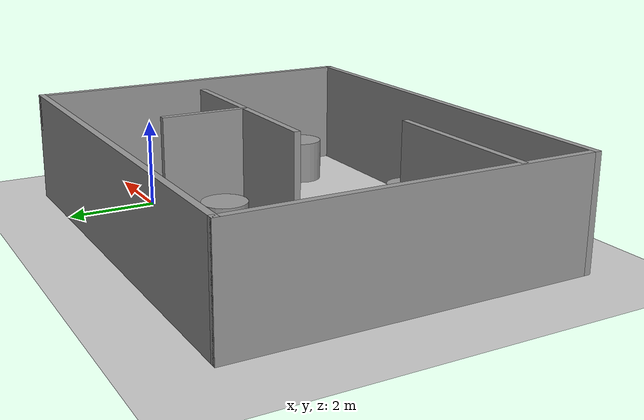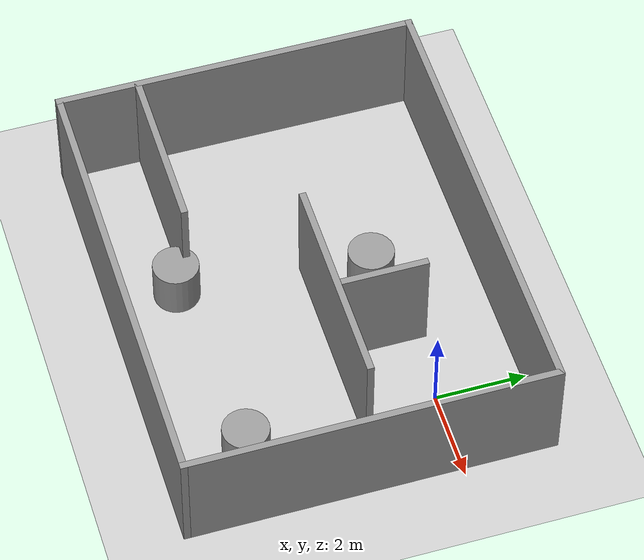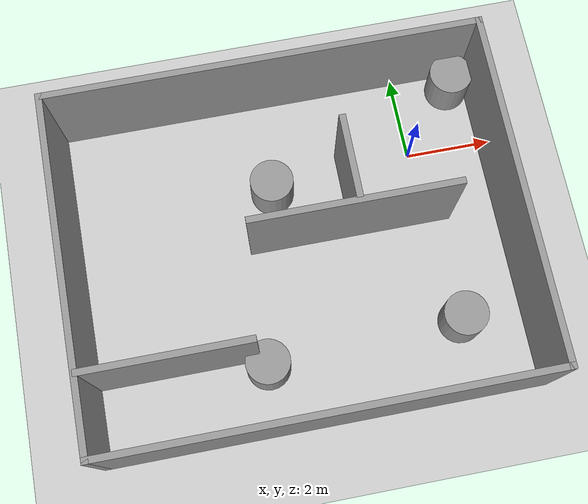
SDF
<sdf version="1.7">
 <world name="default">
  <light name="sun" type="directional">
   <pose>0 0 10 0 -0 0</pose>
   <diffuse>0.8 0.8 0.8 1</diffuse>
   <specular>0.2 0.2 0.2 1</specular>
   <attenuation>
    <range>1000</range>
    <constant>0.9</constant>
    <linear>0.01</linear>
    <quadratic>0.001</quadratic>
   </attenuation>
   <direction>-0.5 0.1 -0.9</direction>
   <spot><inner_angle>0</inner_angle><outer_angle>0</outer_angle><falloff>0</falloff></spot>
  </light>
  <model name="ground_plane">
   <static>1</static>
   <link name="link">
    <collision name="collision">
     <geometry><plane><normal>0 0 1</normal><size>100 100</size></plane></geometry>
     <surface>
      <contact><collide_bitmask>65535</collide_bitmask></contact>
      <friction><ode><mu>100</mu><mu2>50</mu2></ode></friction>
     </surface>
    </collision>
    <visual name="visual">
     <cast_shadows>0</cast_shadows>
     <geometry><plane><normal>0 0 1</normal><size>100 100</size></plane></geometry>
     <material>
      <script><uri>file://media/materials/scripts/gazebo.material</uri><name>Gazebo/Grey</name></script>
     </material>
    </visual>
   </link>
  </model>
  <gravity>0 0 -9.8</gravity>
  <magnetic_field>6e-06 2.3e-05 -4.2e-05</magnetic_field>
  <atmosphere type="adiabatic"/>
  <physics type="ode">
   <max_step_size>0.001</max_step_size>
   <real_time_factor>1</real_time_factor>
   <real_time_update_rate>1000</real_time_update_rate>
  </physics>
  <scene><ambient>0.4 0.4 0.4 1</ambient><background>0.7 0.7 0.7 1</background><shadows>1</shadows></scene>
  <spherical_coordinates>
   <surface_model>EARTH_WGS84</surface_model>
   <latitude_deg>0</latitude_deg>
   <longitude_deg>0</longitude_deg>
   <elevation>0</elevation>
   <heading_deg>0</heading_deg>
  </spherical_coordinates>
  <model name="Untitled">
   <pose>-3.13832 -1.94479 0 0 -0 0</pose>
   <link name="Wall_11">
    <collision name="Wall_11_Collision">
     <geometry><box><size>10 0.15 2.5</size></box></geometry>
     <pose>0 0 1.25 0 -0 0</pose>
    </collision>
    <visual name="Wall_11_Visual">
     <pose>0 0 1.25 0 -0 0</pose>
     <geometry><box><size>10 0.15 2.5</size></box></geometry>
     <material>
      <script><uri>file://media/materials/scripts/gazebo.material</uri><name>Gazebo/Grey</name></script>
      <ambient>1 1 1 1</ambient>
     </material>
     <meta><layer>0</layer></meta>
    </visual>
    <pose>0 -3.925 0 0 -0 3.14159</pose>
   </link>
   <link name="Wall_12">
    <collision name="Wall_12_Collision">
     <geometry><box><size>8 0.15 2.5</size></box></geometry>
     <pose>0 0 1.25 0 -0 0</pose>
    </collision>
    <visual name="Wall_12_Visual">
     <pose>0 0 1.25 0 -0 0</pose>
     <geometry><box><size>8 0.15 2.5</size></box></geometry>
     <material>
      <script><uri>file://media/materials/scripts/gazebo.material</uri><name>Gazebo/Grey</name></script>
      <ambient>1 1 1 1</ambient>
     </material>
     <meta><layer>0</layer></meta>
    </visual>
    <pose>-4.925 -0 0 0 -0 1.5708</pose>
   </link>
   <link name="Wall_13">
    <collision name="Wall_13_Collision">
     <geometry><box><size>10 0.15 2.5</size></box></geometry>
     <pose>0 0 1.25 0 -0 0</pose>
    </collision>
    <visual name="Wall_13_Visual">
     <pose>0 0 1.25 0 -0 0</pose>
     <geometry><box><size>10 0.15 2.5</size></box></geometry>
     <material>
      <script><uri>file://media/materials/scripts/gazebo.material</uri><name>Gazebo/Grey</name></script>
      <ambient>1 1 1 1</ambient>
     </material>
     <meta><layer>0</layer></meta>
    </visual>
    <pose>0 3.925 0 0 -0 0</pose>
   </link>
   <link name="Wall_19">
    <collision name="Wall_19_Collision">
     <geometry><box><size>3.75 0.15 2.5</size></box></geometry>
     <pose>0 0 1.25 0 -0 0</pose>
    </collision>
    <visual name="Wall_19_Visual">
     <pose>0 0 1.25 0 -0 0</pose>
     <geometry><box><size>3.75 0.15 2.5</size></box></geometry>
     <material>
      <script><uri>file://media/materials/scripts/gazebo.material</uri><name>Gazebo/Grey</name></script>
      <ambient>1 1 1 1</ambient>
     </material>
     <meta><layer>0</layer></meta>
    </visual>
    <pose>-3.07981 -2.18553 0 0 -0 0</pose>
   </link>
   <link name="Wall_22">
    <collision name="Wall_22_Collision">
     <geometry><box><size>4.75 0.15 2.5</size></box></geometry>
     <pose>0 0 1.25 0 -0 0</pose>
    </collision>
    <visual name="Wall_22_Visual">
     <pose>0 0 1.25 0 -0 0</pose>
     <geometry><box><size>4.75 0.15 2.5</size></box></geometry>
     <material>
      <script><uri>file://media/materials/scripts/gazebo.material</uri><name>Gazebo/Grey</name></script>
      <ambient>1 1 1 1</ambient>
     </material>
     <meta><layer>0</layer></meta>
    </visual>
    <pose>1.38256 0.308558 0 0 -0 0</pose>
   </link>
   <link name="Wall_25">
    <collision name="Wall_25_Collision">
     <geometry><box><size>2 0.15 2.5</size></box></geometry>
     <pose>0 0 1.25 0 -0 0</pose>
    </collision>
    <visual name="Wall_25_Visual">
     <pose>0 0 1.25 0 -0 0</pose>
     <geometry><box><size>2 0.15 2.5</size></box></geometry>
     <material>
      <script><uri>file://media/materials/scripts/gazebo.material</uri><name>Gazebo/Grey</name></script>
      <ambient>1 1 1 1</ambient>
     </material>
     <meta><layer>0</layer></meta>
    </visual>
    <pose>1.47607 1.27378 0 0 -0 1.5708</pose>
   </link>
   <link name="Wall_9">
    <collision name="Wall_9_Collision">
     <geometry><box><size>8 0.15 2.5</size></box></geometry>
     <pose>0 0 1.25 0 -0 0</pose>
    </collision>
    <visual name="Wall_9_Visual">
     <pose>0 0 1.25 0 -0 0</pose>
     <geometry><box><size>8 0.15 2.5</size></box></geometry>
     <material>
      <script><uri>file://media/materials/scripts/gazebo.material</uri><name>Gazebo/Grey</name></script>
      <ambient>1 1 1 1</ambient>
     </material>
     <meta><layer>0</layer></meta>
    </visual>
    <pose>4.925 -0 0 0 -0 -1.5708</pose>
   </link>
   <static>1</static>
  </model>
  <model name="world2.world">
   <link name="link_0">
    <inertial>
     <mass>1</mass>
     <inertia><ixx>0.145833</ixx><ixy>0</ixy><ixz>0</ixz><iyy>0.145833</iyy><iyz>0</iyz><izz>0.125</izz></inertia>
    </inertial>
    <pose>-1.86728 1.5138 0 0 -0 0</pose>
    <visual name="visual">
     <geometry><cylinder><radius>0.5</radius><length>1</length></cylinder></geometry>
     <material>
      <lighting>1</lighting>
      <script><uri>file://media/materials/scripts/gazebo.material</uri><name>Gazebo/Grey</name></script>
      <shader type="pixel"/>
     </material>
    </visual>
    <collision name="collision">
     <geometry><cylinder><radius>0.5</radius><length>1</length></cylinder></geometry>
     <surface>
      <friction>
       <ode><mu>1</mu><mu2>1</mu2><fdir1>0 0 0</fdir1><slip1>0</slip1><slip2>0</slip2></ode>
       <torsional>
        <coefficient>1</coefficient>
        <patch_radius>0</patch_radius>
        <surface_radius>0</surface_radius>
        <use_patch_radius>1</use_patch_radius>
        <ode><slip>0</slip></ode>
       </torsional>
      </friction>
      <bounce><restitution_coefficient>0</restitution_coefficient><threshold>1e+06</threshold></bounce>
      <contact>
       <collide_without_contact>0</collide_without_contact>
       <collide_without_contact_bitmask>1</collide_without_contact_bitmask>
       <collide_bitmask>1</collide_bitmask>
       <ode>
        <soft_cfm>0</soft_cfm>
        <soft_erp>0.2</soft_erp>
        <kp>1e+13</kp>
        <kd>1</kd>
        <max_vel>0.01</max_vel>
        <min_depth>0</min_depth>
       </ode>
       <bullet>
        <split_impulse>1</split_impulse>
        <split_impulse_penetration_threshold>-0.01</split_impulse_penetration_threshold>
        <soft_cfm>0</soft_cfm>
        <soft_erp>0.2</soft_erp>
        <kp>1e+13</kp>
        <kd>1</kd>
       </bullet>
      </contact>
     </surface>
    </collision>
   </link>
   <link name="link_1">
    <inertial>
     <mass>1</mass>
     <inertia><ixx>0.145833</ixx><ixy>0</ixy><ixz>0</ixz><iyy>0.145833</iyy><iyz>0</iyz><izz>0.125</izz></inertia>
    </inertial>
    <pose>2.78293 3.355 0 0 -0 0</pose>
    <visual name="visual">
     <geometry><cylinder><radius>0.5</radius><length>1</length></cylinder></geometry>
     <material>
      <lighting>1</lighting>
      <script><uri>file://media/materials/scripts/gazebo.material</uri><name>Gazebo/Grey</name></script>
      <shader type="pixel"/>
     </material>
    </visual>
    <collision name="collision">
     <geometry><cylinder><radius>0.5</radius><length>1</length></cylinder></geometry>
     <surface>
      <friction>
       <ode><mu>1</mu><mu2>1</mu2><fdir1>0 0 0</fdir1><slip1>0</slip1><slip2>0</slip2></ode>
       <torsional>
        <coefficient>1</coefficient>
        <patch_radius>0</patch_radius>
        <surface_radius>0</surface_radius>
        <use_patch_radius>1</use_patch_radius>
        <ode><slip>0</slip></ode>
       </torsional>
      </friction>
      <bounce><restitution_coefficient>0</restitution_coefficient><threshold>1e+06</threshold></bounce>
      <contact>
       <collide_without_contact>0</collide_without_contact>
       <collide_without_contact_bitmask>1</collide_without_contact_bitmask>
       <collide_bitmask>1</collide_bitmask>
       <ode>
        <soft_cfm>0</soft_cfm>
        <soft_erp>0.2</soft_erp>
        <kp>1e+13</kp>
        <kd>1</kd>
        <max_vel>0.01</max_vel>
        <min_depth>0</min_depth>
       </ode>
       <bullet>
        <split_impulse>1</split_impulse>
        <split_impulse_penetration_threshold>-0.01</split_impulse_penetration_threshold>
        <soft_cfm>0</soft_cfm>
        <soft_erp>0.2</soft_erp>
        <kp>1e+13</kp>
        <kd>1</kd>
       </bullet>
      </contact>
     </surface>
    </collision>
   </link>
   <link name="link_4">
    <inertial>
     <mass>1</mass>
     <inertia><ixx>0.145833</ixx><ixy>0</ixy><ixz>0</ixz><iyy>0.145833</iyy><iyz>0</iyz><izz>0.125</izz></inertia>
    </inertial>
    <pose>1.7829 -2.31749 0 0 -0 0</pose>
    <visual name="visual">
     <geometry><cylinder><radius>0.5</radius><length>1</length></cylinder></geometry>
     <material>
      <lighting>1</lighting>
      <script><uri>file://media/materials/scripts/gazebo.material</uri><name>Gazebo/Grey</name></script>
      <shader type="pixel"/>
     </material>
    </visual>
    <collision name="collision">
     <geometry><cylinder><radius>0.5</radius><length>1</length></cylinder></geometry>
     <surface>
      <friction>
       <ode><mu>1</mu><mu2>1</mu2><fdir1>0 0 0</fdir1><slip1>0</slip1><slip2>0</slip2></ode>
       <torsional>
        <coefficient>1</coefficient>
        <patch_radius>0</patch_radius>
        <surface_radius>0</surface_radius>
        <use_patch_radius>1</use_patch_radius>
        <ode><slip>0</slip></ode>
       </torsional>
      </friction>
      <bounce><restitution_coefficient>0</restitution_coefficient><threshold>1e+06</threshold></bounce>
      <contact>
       <collide_without_contact>0</collide_without_contact>
       <collide_without_contact_bitmask>1</collide_without_contact_bitmask>
       <collide_bitmask>1</collide_bitmask>
       <ode>
        <soft_cfm>0</soft_cfm>
        <soft_erp>0.2</soft_erp>
        <kp>1e+13</kp>
        <kd>1</kd>
        <max_vel>0.01</max_vel>
        <min_depth>0</min_depth>
       </ode>
       <bullet>
        <split_impulse>1</split_impulse>
        <split_impulse_penetration_threshold>-0.01</split_impulse_penetration_threshold>
        <soft_cfm>0</soft_cfm>
        <soft_erp>0.2</soft_erp>
        <kp>1e+13</kp>
        <kd>1</kd>
       </bullet>
      </contact>
     </surface>
    </collision>
   </link>
   <link name="link_5">
    <inertial>
     <mass>1</mass>
     <inertia><ixx>0.145833</ixx><ixy>0</ixy><ixz>0</ixz><iyy>0.145833</iyy><iyz>0</iyz><izz>0.125</izz></inertia>
    </inertial>
    <pose>-2.69856 -2.55131 0 0 -0 0</pose>
    <visual name="visual">
     <geometry><cylinder><radius>0.5</radius><length>1</length></cylinder></geometry>
     <material>
      <lighting>1</lighting>
      <script><uri>file://media/materials/scripts/gazebo.material</uri><name>Gazebo/Grey</name></script>
      <shader type="pixel"/>
     </material>
    </visual>
    <collision name="collision">
     <geometry><cylinder><radius>0.5</radius><length>1</length></cylinder></geometry>
     <surface>
      <friction>
       <ode><mu>1</mu><mu2>1</mu2><fdir1>0 0 0</fdir1><slip1>0</slip1><slip2>0</slip2></ode>
       <torsional>
        <coefficient>1</coefficient>
        <patch_radius>0</patch_radius>
        <surface_radius>0</surface_radius>
        <use_patch_radius>1</use_patch_radius>
        <ode><slip>0</slip></ode>
       </torsional>
      </friction>
      <bounce><restitution_coefficient>0</restitution_coefficient><threshold>1e+06</threshold></bounce>
      <contact>
       <collide_without_contact>0</collide_without_contact>
       <collide_without_contact_bitmask>1</collide_without_contact_bitmask>
       <collide_bitmask>1</collide_bitmask>
       <ode>
        <soft_cfm>0</soft_cfm>
        <soft_erp>0.2</soft_erp>
        <kp>1e+13</kp>
        <kd>1</kd>
        <max_vel>0.01</max_vel>
        <min_depth>0</min_depth>
       </ode>
       <bullet>
        <split_impulse>1</split_impulse>
        <split_impulse_penetration_threshold>-0.01</split_impulse_penetration_threshold>
        <soft_cfm>0</soft_cfm>
        <soft_erp>0.2</soft_erp>
        <kp>1e+13</kp>
        <kd>1</kd>
       </bullet>
      </contact>
     </surface>
    </collision>
   </link>
   <static>0</static>
   <pose>-1.50301 -1.85414 0.49999 0 -0 0</pose>
  </model>
 </world>
</sdf>
